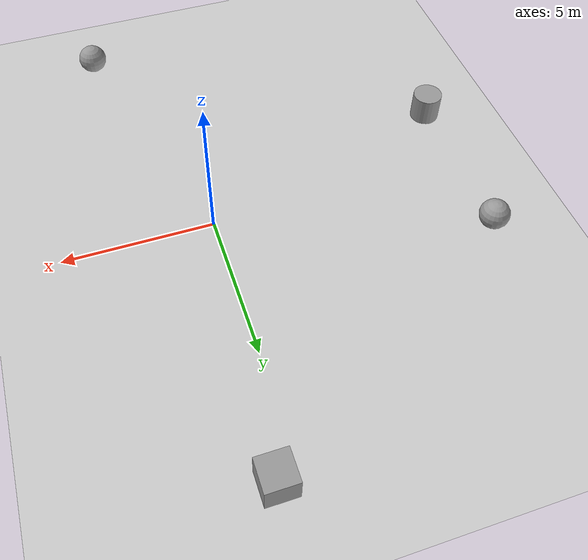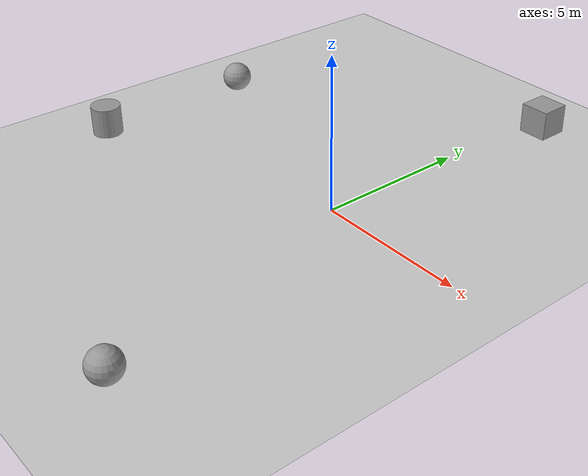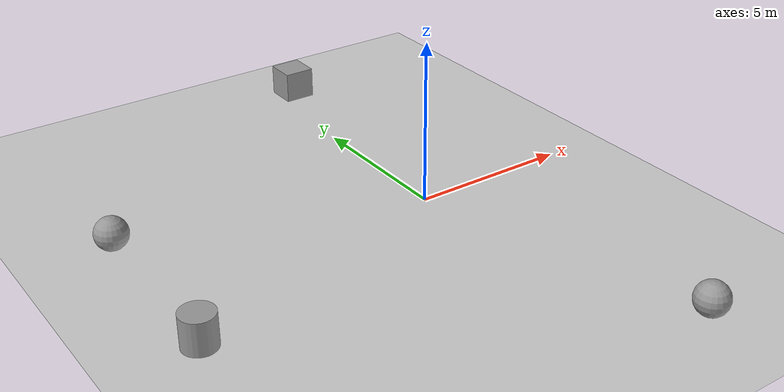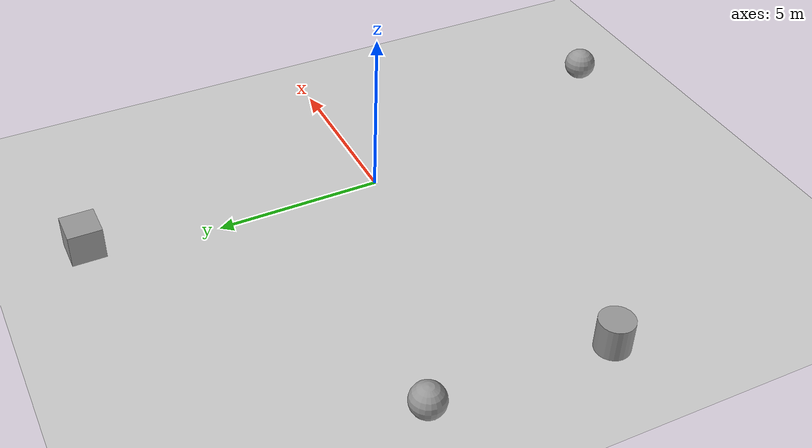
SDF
<sdf version="1.7">
 <world name="default">
  <light name="sun" type="directional">
   <pose>0 0 10 0 -0 0</pose>
   <diffuse>0.8 0.8 0.8 1</diffuse>
   <specular>0.2 0.2 0.2 1</specular>
   <attenuation>
    <range>1000</range>
    <constant>0.9</constant>
    <linear>0.01</linear>
    <quadratic>0.001</quadratic>
   </attenuation>
   <direction>-0.5 0.1 -0.9</direction>
   <spot><inner_angle>0</inner_angle><outer_angle>0</outer_angle><falloff>0</falloff></spot>
  </light>
  <model name="ground_plane">
   <static>1</static>
   <link name="link">
    <collision name="collision">
     <geometry><plane><normal>0 0 1</normal><size>100 100</size></plane></geometry>
     <surface>
      <contact><collide_bitmask>65535</collide_bitmask></contact>
      <friction><ode><mu>100</mu><mu2>50</mu2></ode></friction>
     </surface>
    </collision>
    <visual name="visual">
     <cast_shadows>0</cast_shadows>
     <geometry><plane><normal>0 0 1</normal><size>100 100</size></plane></geometry>
     <material>
      <script><uri>file://media/materials/scripts/gazebo.material</uri><name>Gazebo/Grey</name></script>
     </material>
    </visual>
   </link>
  </model>
  <gravity>0 0 -9.8</gravity>
  <magnetic_field>6e-06 2.3e-05 -4.2e-05</magnetic_field>
  <atmosphere type="adiabatic"/>
  <physics type="ode">
   <max_step_size>0.001</max_step_size>
   <real_time_factor>1</real_time_factor>
   <real_time_update_rate>1000</real_time_update_rate>
  </physics>
  <scene><ambient>0.4 0.4 0.4 1</ambient><background>0.7 0.7 0.7 1</background><shadows>1</shadows></scene>
  <spherical_coordinates>
   <surface_model>EARTH_WGS84</surface_model>
   <latitude_deg>0</latitude_deg>
   <longitude_deg>0</longitude_deg>
   <elevation>0</elevation>
   <heading_deg>0</heading_deg>
  </spherical_coordinates>
  <model name="unit_sphere">
   <pose>-8.6608 2.77842 0.5 0 -0 0</pose>
   <link name="link">
    <inertial>
     <mass>1</mass>
     <inertia><ixx>0.1</ixx><ixy>0</ixy><ixz>0</ixz><iyy>0.1</iyy><iyz>0</iyz><izz>0.1</izz></inertia>
    </inertial>
    <collision name="collision"><geometry><sphere><radius>0.5</radius></sphere></geometry></collision>
    <visual name="visual">
     <geometry><sphere><radius>0.5</radius></sphere></geometry>
     <material>
      <script><name>Gazebo/Grey</name><uri>file://media/materials/scripts/gazebo.material</uri></script>
     </material>
    </visual>
   </link>
  </model>
  <model name="unit_cylinder_0">
   <pose>-8.71935 -2.59257 0.499993 -3e-06 -3e-06 0</pose>
   <link name="link">
    <inertial>
     <mass>1</mass>
     <inertia><ixx>0.145833</ixx><ixy>0</ixy><ixz>0</ixz><iyy>0.145833</iyy><iyz>0</iyz><izz>0.125</izz></inertia>
    </inertial>
    <collision name="collision">
     <geometry><cylinder><radius>0.5</radius><length>1</length></cylinder></geometry>
    </collision>
    <visual name="visual">
     <geometry><cylinder><radius>0.5</radius><length>1</length></cylinder></geometry>
     <material>
      <script><name>Gazebo/Grey</name><uri>file://media/materials/scripts/gazebo.material</uri></script>
     </material>
    </visual>
   </link>
  </model>
  <model name="unit_sphere_0">
   <pose>2.38025 -8.89854 0.5 0 -0 0</pose>
   <link name="link">
    <inertial>
     <mass>1</mass>
     <inertia><ixx>0.1</ixx><ixy>0</ixy><ixz>0</ixz><iyy>0.1</iyy><iyz>0</iyz><izz>0.1</izz></inertia>
    </inertial>
    <collision name="collision"><geometry><sphere><radius>0.5</radius></sphere></geometry></collision>
    <visual name="visual">
     <geometry><sphere><radius>0.5</radius></sphere></geometry>
     <material>
      <script><name>Gazebo/Grey</name><uri>file://media/materials/scripts/gazebo.material</uri></script>
     </material>
    </visual>
   </link>
  </model>
  <model name="unit_box_0">
   <pose>0.704356 8.78569 0.5 0 -0 0</pose>
   <link name="link">
    <inertial>
     <mass>1</mass>
     <inertia>
      <ixx>0.166667</ixx>
      <ixy>0</ixy>
      <ixz>0</ixz>
      <iyy>0.166667</iyy>
      <iyz>0</iyz>
      <izz>0.166667</izz>
     </inertia>
    </inertial>
    <collision name="collision"><geometry><box><size>1 1 1</size></box></geometry></collision>
    <visual name="visual">
     <geometry><box><size>1 1 1</size></box></geometry>
     <material>
      <script><name>Gazebo/Grey</name><uri>file://media/materials/scripts/gazebo.material</uri></script>
     </material>
    </visual>
   </link>
  </model>
  <light name="user_point_light_0" type="point">
   <pose>4.16512 -2.48675 1 0 -0 0</pose>
   <diffuse>0.5 0.5 0.5 1</diffuse>
   <specular>0.1 0.1 0.1 1</specular>
   <attenuation>
    <range>20</range>
    <constant>0.5</constant>
    <linear>0.01</linear>
    <quadratic>0.001</quadratic>
   </attenuation>
   <cast_shadows>0</cast_shadows>
   <direction>0 0 -1</direction>
  </light>
 </world>
</sdf>
